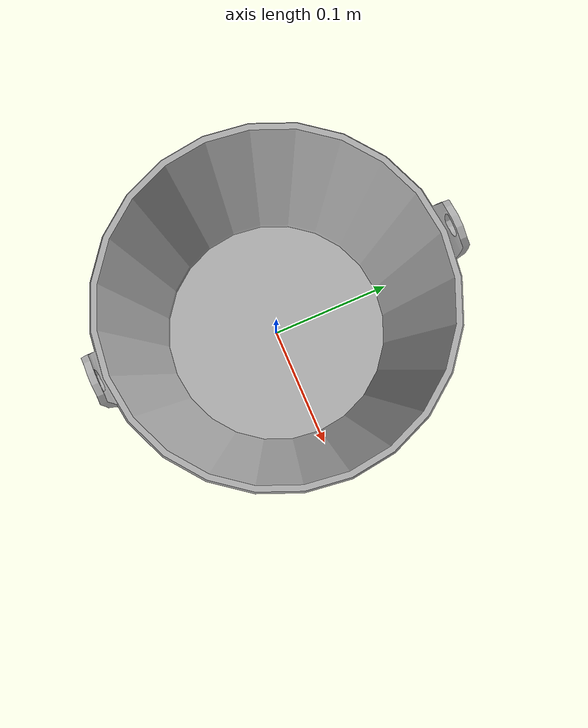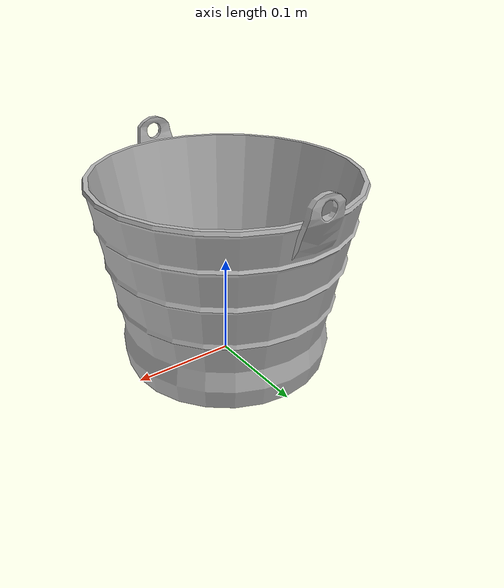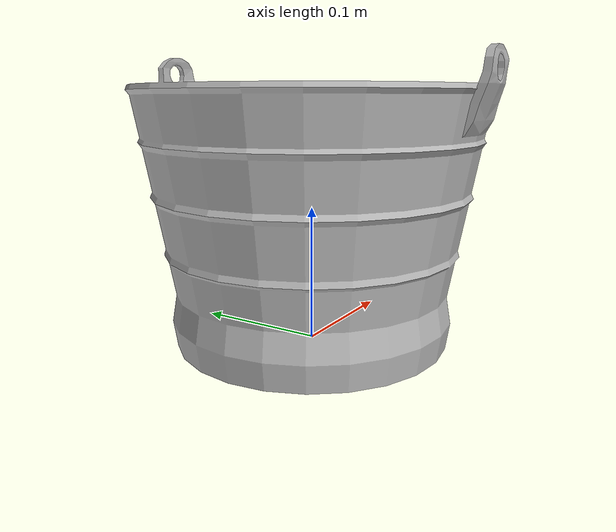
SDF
<?xml version="1.0" ?>
<sdf version='1.4'>
  <model name="bucket">
      <static>1</static>
      <link name='link'>
        <visual name='visual'>
          <geometry>
            <mesh>
              <uri>model://bucket/meshes/bucket.dae</uri>
              <scale>0.1 0.1 0.1</scale>
            </mesh>
          </geometry>
        </visual>
        <collision name='collision'>
          <laser_retro>0</laser_retro>
          <max_contacts>10</max_contacts>
          <pose frame=''>0 0 0.085 0 0 0</pose>
          <geometry>
            <cylinder>
              <length>0.19</length>
              <radius>0.105</radius>
            </cylinder>
          </geometry>
        </collision>
      </link>
  </model>
</sdf>
